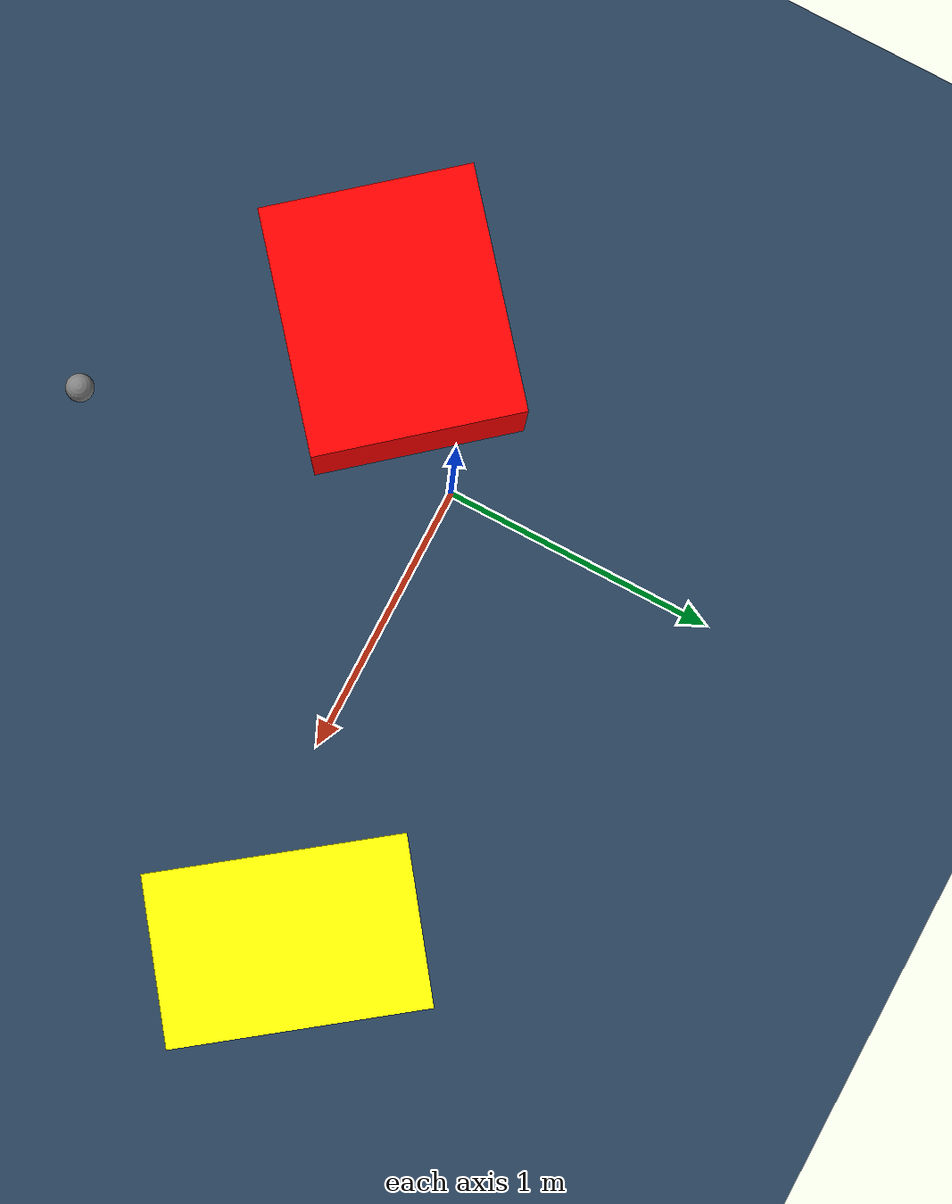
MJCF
<?xml version="1.0" ?>
<mujoco model="generated_environment">
  <option timestep="0.01" integrator="RK4" cone="elliptic"/>
  <default>
    <geom density="1"/>
  </default>
  <asset>
    <texture builtin="gradient" height="3072" rgb1="0.3 0.5 0.7" rgb2="0 0 0" type="skybox" width="512"/>
    <texture builtin="checker" height="300" mark="edge" markrgb="0.8 0.8 0.8" name="groundplane" rgb1="0.2 0.3 0.4" rgb2="0.1 0.2 0.3" type="2d" width="300"/>
    <material name="groundplane" reflectance="0.2" texrepeat="5 5" texture="groundplane" texuniform="true"/>
    <material name="robot" rgba="0.0 1.0 0.0 1"/>
  </asset>
  <worldbody>
    <light dir="0 0 -1" directional="true" pos="0 0 1.5"/>
    <geom condim="4" friction="1.0 0.005 0.001" material="groundplane" name="floor" size="0 0 0.05" type="plane"/>
    <body name="walls"/>
    <body name="robot">
      <joint name="joint_x" type="slide" pos="0 0 0" axis="1 0 0"/>
      <joint name="joint_y" type="slide" pos="0 0 0" axis="0 1 0"/>
      <geom name="robot" type="sphere" pos="0.30088291599727013 -1.2926597188778026 0.2" size="0.05" mass="5." friction="1.0 0.005 0.0001" condim="4"/>
      <site name="sensor_ball"/>
    </body>
    <body name="obstacle_1_movable">
      <geom name="obstacle_1_movable" condim="4" pos="1.629541334994219 0.23565390117063623 0.2" euler="0 0 36.67382515912791" friction="1.0 0.005 0.001" rgba="1 1 0 1" size="0.29200883449467635 0.4468997284262256 0.2" type="box" mass="0.1"/>
      <joint type="free"/>
    </body>
    <body name="obstacle_2_static">
      <geom name="obstacle_2_static" condim="4" pos="-0.40772353000796024 -0.44713774330101597 0.2" euler="0 0 129.92360347197615" friction="1.0 0.005 0.001" rgba="1 0 0 1" size="0.37531426122349254 0.43708031584962614 0.2" type="box"/>
    </body>
  </worldbody>
  <actuator>
    <motor name="actuator_x" joint="joint_x" gear="1" ctrlrange="-1 1"/>
    <motor name="actuator_y" joint="joint_y" gear="1" ctrlrange="-1 1"/>
  </actuator>
</mujoco>
